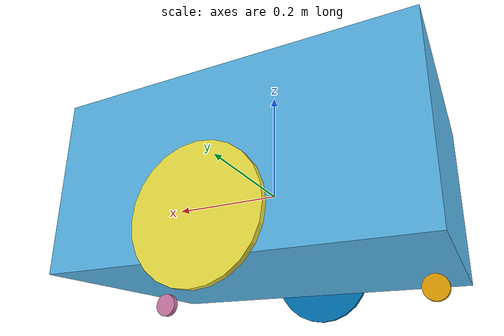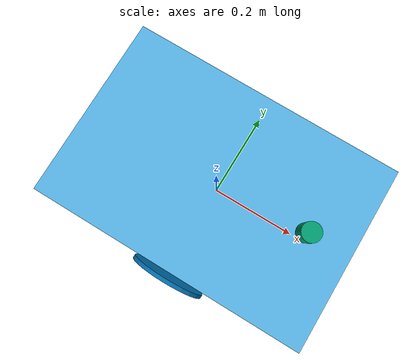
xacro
<?xml version="1.0"?>
<robot xmlns:xacro="http://www.ros.org/wiki/xacro" name="simple_mobile_platform">

<!-- CYLINDER INERTIA-->
    <xacro:macro name="cylinder_inertia" params="radius length mass *origin">
        <inertial>
            <mass value="${mass}" />
            <xacro:insert_block name="origin" />
            <inertia ixx="${0.0833333 * mass * (3 * radius * radius + length * length)}" ixy="0.0" ixz="0.0"
                     iyy="${0.0833333 * mass * (3 * radius * radius + length * length)}" iyz="0.0"
                     izz="${0.5 * mass * radius * radius}" />
        </inertial>
    </xacro:macro>

<!-- ROBOT FRAME -->
    <xacro:macro name="frame" params="name parent trans rot">
        <link name="${name}">
            <visual>
                <geometry>
                    <box size="0.6 0.4 0.3"/>
                </geometry>
            </visual>
            <collision>
                <geometry>
                    <box size="0.6 0.4 0.3"/>
                </geometry>
            </collision>
            <xacro:cylinder_inertia radius="0.3" length="0.2" mass="30">
                <origin xyz="0 0 0" rpy="0 0 0"/>
            </xacro:cylinder_inertia>
        </link>

        <joint name="${name}_joint" type="fixed">
            <parent link="${parent}"/>
            <child link="${name}"/>
            <origin rpy="${rot}" xyz="${trans}"/>
        </joint>
    </xacro:macro>

<!-- ROBOT PROPULSION WHEEL -->
    <xacro:macro name="propulsion_wheel" params="name parent trans rot">
        <link name="${name}">
            <visual>
                <geometry>
                    <cylinder radius="0.1" length="0.01"/>
                </geometry>
            </visual>
            <collision>
                <geometry>
                    <cylinder radius="0.1" length="0.01"/>
                </geometry>
            </collision>
            <xacro:cylinder_inertia radius="0.1" length="0.01" mass="1">
                <origin xyz="0 0 0" rpy="0 0 0"/>
            </xacro:cylinder_inertia>
        </link>

        <joint name="${name}_joint" type="continuous">
            <parent link="${parent}"/>
            <child link="${name}"/>
            <origin rpy="${rot}" xyz="${trans}"/>
            <axis xyz="0 0 1" />
        </joint>
    </xacro:macro>

<!-- ROBOT CASTOR WHEEL-->

    <xacro:macro name="castor_wheel" params="name parent trans rot">

        <link name="${name}_turn">
            <xacro:cylinder_inertia radius="0.1" length="0.01" mass="0.2">
                <origin xyz="0 0 0" rpy="0 0 0"/>
            </xacro:cylinder_inertia>
        </link>

        <joint name="${name}_turn_joint" type="continuous">
            <parent link="${parent}"/>
            <child link="${name}_turn"/>
            <origin rpy="${rot}" xyz="${trans}"/>
            <axis xyz="0 0 1"/>
            </joint>

        <link name="${name}_wheel">
            <visual>
                <geometry>
                    <cylinder radius="0.02" length="0.01"/>
                </geometry>
            </visual>
            <collision>
                <geometry>
                    <cylinder radius="0.02" length="0.01"/>
                </geometry>
            </collision>
            <xacro:cylinder_inertia radius="0.1" length="0.01" mass="0.3">
                <origin xyz="0 0 0" rpy="0 0 0"/>
            </xacro:cylinder_inertia>
        </link>

        <joint name="${name}_wheel_joint" type="continuous">
            <parent link="${name}_turn"/>
            <child link="${name}_wheel"/>
            <origin rpy="1.5708 0 0" xyz="-0.02 0 0"/>
            <axis xyz="0 0 1"/>
            </joint>

    </xacro:macro>

<!-- ROBOT LIDAR -->

    <xacro:macro name="lidar" params="name parent trans rot">
        <link name="${name}">
            <visual>
                <geometry>
                    <cylinder radius="0.02" length="0.05"/>
                </geometry>
            </visual>
            <collision>
                <geometry>
                    <cylinder radius="0.02" length="0.05"/>
                </geometry>
            </collision>
            <xacro:cylinder_inertia radius="0.3" length="0.2" mass="30">
                <origin xyz="0 0 0" rpy="0 0 0"/>
            </xacro:cylinder_inertia>
        </link>

        <joint name="${name}_joint" type="fixed">
            <parent link="${parent}"/>
            <child link="${name}"/>
            <origin rpy="${rot}" xyz="${trans}"/>
        </joint>
    </xacro:macro>

<!-- ASSEMBLY -->

    <link name="base_link"/>

    <xacro:frame
        name="frame"
        parent="base_link"
        trans="0 0 0"
        rot="0 0 0"
        />

    <xacro:lidar
        name="lidar"
        parent="base_link"
        trans="0.2 0 0.18"
        rot="0 0 0"
        />

    <xacro:propulsion_wheel
        name="propulsion_wheel_l"
        parent="frame"
        trans="0 0.24 -0.1"
        rot="1.5708 0 0"
        />

    <xacro:propulsion_wheel
        name="propulsion_wheel_r"
        parent="frame"
        trans="0 -0.24 -0.1"
        rot="1.5708 0 0"
        />

    <xacro:castor_wheel
        name="castor_wheel_f"
        parent="frame"
        trans="0.24 0 -0.18"
        rot="0 0 0"
        />

    <xacro:castor_wheel
        name="castor_wheel_r"
        parent="frame"
        trans="-0.24 0 -0.18"
        rot="0 0 0"
        />

</robot>
